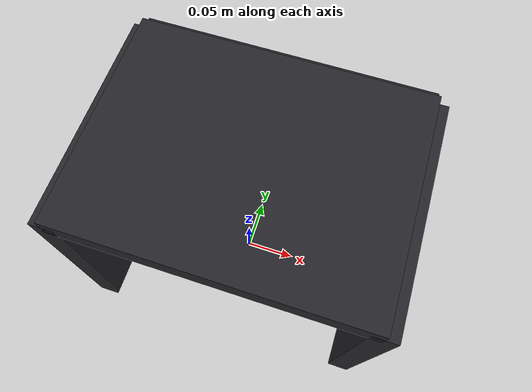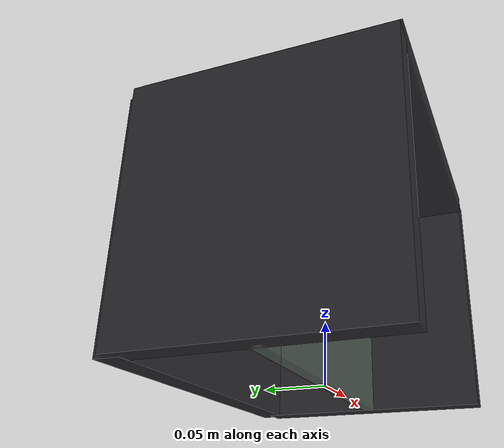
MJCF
<?xml version="1.0" encoding="utf-8"?>
<mujoco model="anaerobic_chamber">
  <compiler angle="radian" autolimits="true"/>
  <default>
    <default class="body"><geom contype="1" conaffinity="1"/></default>
  </default>
  <worldbody>
    <body name="base">
      <geom type="box" size="0.13 0.01 0.1" pos="0 0.1 0.1" rgba="0.15 0.15 0.17 1" class="body"/>
      <geom type="box" size="0.01 0.1 0.1" pos="-0.13 0 0.1" rgba="0.15 0.15 0.17 1" class="body"/>
      <geom type="box" size="0.01 0.1 0.1" pos="0.13 0 0.1" rgba="0.15 0.15 0.17 1" class="body"/>
      <geom type="box" size="0.13 0.1 0.01" pos="0 0 0.2" rgba="0.15 0.15 0.17 1" class="body"/>
      <body name="door" pos="-0.13 0.0 0.1">
        <joint name="door_joint" type="hinge" axis="0 0 1" range="0 1.8" damping="0.6" frictionloss="0.3"/>
  <geom type="box" size="0.13 0.005 0.1" pos="0.13 0 0" rgba="0.5 0.6 0.5 0.4" class="body"/>
      </body>
    </body>
  </worldbody>
</mujoco>
